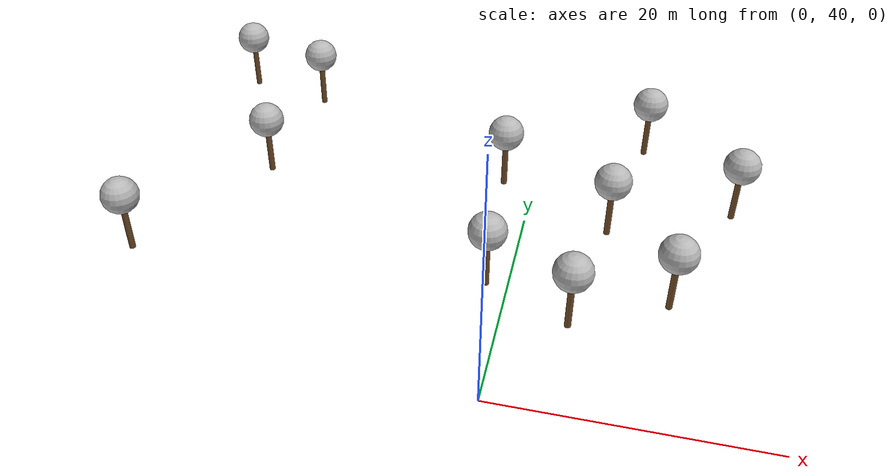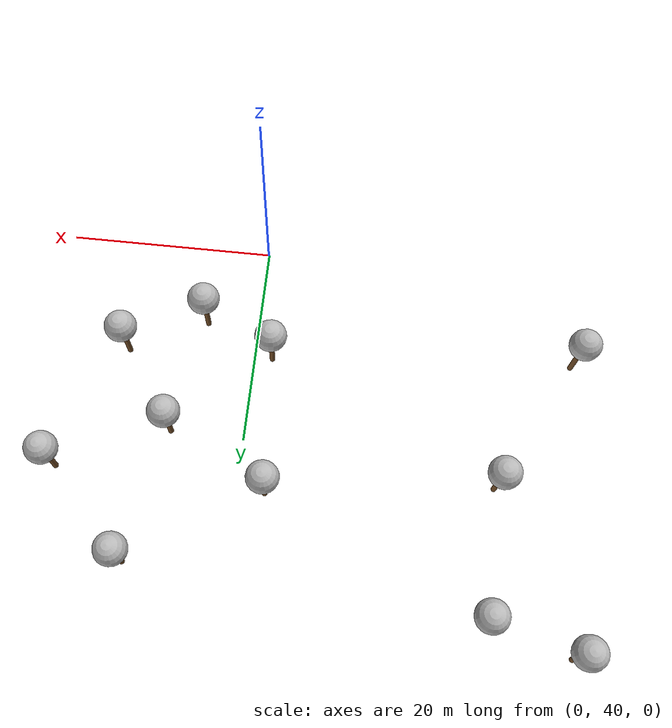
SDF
<sdf version="1.7">
 <world name="default">
  <model name="tree_simple">
   <static>1</static>
   <link name="link">
    <pose>0 0 0.1 0 -0 0</pose>
    <inertial>
     <mass>666</mass>
     <inertia>
      <ixx>0.0861167</ixx>
      <ixy>0</ixy>
      <ixz>0</ixz>
      <iyy>0.0861167</iyy>
      <iyz>0</iyz>
      <izz>0.0861167</izz>
     </inertia>
    </inertial>
    <collision name="collision_trunk">
     <pose>0 0 2 0 -0 0</pose>
     <geometry><cylinder><radius>0.25</radius><length>4</length></cylinder></geometry>
     <surface>
      <contact>
       <poissons_ratio>0.347</poissons_ratio>
       <elastic_modulus>8.8e+09</elastic_modulus>
       <ode><kp>100000</kp><kd>100</kd><max_vel>100</max_vel><min_depth>0.001</min_depth></ode>
      </contact>
      <friction>
       <torsional>
        <coefficient>1</coefficient>
        <use_patch_radius>0</use_patch_radius>
        <surface_radius>0.01</surface_radius>
       </torsional>
      </friction>
     </surface>
    </collision>
    <collision name="collision_treetop">
     <pose>0 0 5.2 0 -0 0</pose>
     <geometry><sphere><radius>1.5</radius></sphere></geometry>
     <surface>
      <contact>
       <poissons_ratio>0.347</poissons_ratio>
       <elastic_modulus>8.8e+09</elastic_modulus>
       <ode><kp>100000</kp><kd>100</kd><max_vel>100</max_vel><min_depth>0.001</min_depth></ode>
      </contact>
      <friction>
       <torsional>
        <coefficient>1</coefficient>
        <use_patch_radius>0</use_patch_radius>
        <surface_radius>0.01</surface_radius>
       </torsional>
      </friction>
     </surface>
    </collision>
    <visual name="trunk">
     <pose>0 0 2 0 -0 0</pose>
     <geometry><cylinder><radius>0.25</radius><length>4</length></cylinder></geometry>
     <material>
      <script>
       <uri>model://tree_simple/scripts</uri>
       <uri>model://tree_simple/materials/textures</uri>
       <name>TreeSimple/Trunk</name>
      </script>
     </material>
    </visual>
    <visual name="treetop">
     <pose>0 0 5.2 0 -0 0</pose>
     <geometry><sphere><radius>1.5</radius></sphere></geometry>
     <material>
      <script>
       <uri>model://tree_simple/scripts</uri>
       <uri>model://tree_simple/materials/textures</uri>
       <name>TreeSimple/Treetop</name>
      </script>
     </material>
    </visual>
   </link>
   <pose>6.82311 59.8354 0 0 -0 0</pose>
  </model>
  <model name="tree_simple_0">
   <static>1</static>
   <link name="link">
    <pose>0 0 0.1 0 -0 0</pose>
    <inertial>
     <mass>666</mass>
     <inertia>
      <ixx>0.0861167</ixx>
      <ixy>0</ixy>
      <ixz>0</ixz>
      <iyy>0.0861167</iyy>
      <iyz>0</iyz>
      <izz>0.0861167</izz>
     </inertia>
    </inertial>
    <collision name="collision_trunk">
     <pose>0 0 2 0 -0 0</pose>
     <geometry><cylinder><radius>0.25</radius><length>4</length></cylinder></geometry>
     <surface>
      <contact>
       <poissons_ratio>0.347</poissons_ratio>
       <elastic_modulus>8.8e+09</elastic_modulus>
       <ode><kp>100000</kp><kd>100</kd><max_vel>100</max_vel><min_depth>0.001</min_depth></ode>
      </contact>
      <friction>
       <torsional>
        <coefficient>1</coefficient>
        <use_patch_radius>0</use_patch_radius>
        <surface_radius>0.01</surface_radius>
       </torsional>
      </friction>
     </surface>
    </collision>
    <collision name="collision_treetop">
     <pose>0 0 5.2 0 -0 0</pose>
     <geometry><sphere><radius>1.5</radius></sphere></geometry>
     <surface>
      <contact>
       <poissons_ratio>0.347</poissons_ratio>
       <elastic_modulus>8.8e+09</elastic_modulus>
       <ode><kp>100000</kp><kd>100</kd><max_vel>100</max_vel><min_depth>0.001</min_depth></ode>
      </contact>
      <friction>
       <torsional>
        <coefficient>1</coefficient>
        <use_patch_radius>0</use_patch_radius>
        <surface_radius>0.01</surface_radius>
       </torsional>
      </friction>
     </surface>
    </collision>
    <visual name="trunk">
     <pose>0 0 2 0 -0 0</pose>
     <geometry><cylinder><radius>0.25</radius><length>4</length></cylinder></geometry>
     <material>
      <script>
       <uri>model://tree_simple/scripts</uri>
       <uri>model://tree_simple/materials/textures</uri>
       <name>TreeSimple/Trunk</name>
      </script>
     </material>
    </visual>
    <visual name="treetop">
     <pose>0 0 5.2 0 -0 0</pose>
     <geometry><sphere><radius>1.5</radius></sphere></geometry>
     <material>
      <script>
       <uri>model://tree_simple/scripts</uri>
       <uri>model://tree_simple/materials/textures</uri>
       <name>TreeSimple/Treetop</name>
      </script>
     </material>
    </visual>
   </link>
   <pose>12.128 52.0004 0 0 -0 0</pose>
  </model>
  <model name="tree_simple_0_clone">
   <static>1</static>
   <link name="link">
    <pose>0 0 0.1 0 -0 0</pose>
    <inertial>
     <mass>666</mass>
     <inertia>
      <ixx>0.0861167</ixx>
      <ixy>0</ixy>
      <ixz>0</ixz>
      <iyy>0.0861167</iyy>
      <iyz>0</iyz>
      <izz>0.0861167</izz>
     </inertia>
    </inertial>
    <collision name="collision_trunk">
     <pose>0 0 2 0 -0 0</pose>
     <geometry><cylinder><radius>0.25</radius><length>4</length></cylinder></geometry>
     <surface>
      <contact>
       <poissons_ratio>0.347</poissons_ratio>
       <elastic_modulus>8.8e+09</elastic_modulus>
       <ode><kp>100000</kp><kd>100</kd><max_vel>100</max_vel><min_depth>0.001</min_depth></ode>
      </contact>
      <friction>
       <torsional>
        <coefficient>1</coefficient>
        <use_patch_radius>0</use_patch_radius>
        <surface_radius>0.01</surface_radius>
       </torsional>
      </friction>
     </surface>
    </collision>
    <collision name="collision_treetop">
     <pose>0 0 5.2 0 -0 0</pose>
     <geometry><sphere><radius>1.5</radius></sphere></geometry>
     <surface>
      <contact>
       <poissons_ratio>0.347</poissons_ratio>
       <elastic_modulus>8.8e+09</elastic_modulus>
       <ode><kp>100000</kp><kd>100</kd><max_vel>100</max_vel><min_depth>0.001</min_depth></ode>
      </contact>
      <friction>
       <torsional>
        <coefficient>1</coefficient>
        <use_patch_radius>0</use_patch_radius>
        <surface_radius>0.01</surface_radius>
       </torsional>
      </friction>
     </surface>
    </collision>
    <visual name="trunk">
     <pose>0 0 2 0 -0 0</pose>
     <geometry><cylinder><radius>0.25</radius><length>4</length></cylinder></geometry>
     <material>
      <script>
       <uri>model://tree_simple/scripts</uri>
       <uri>model://tree_simple/materials/textures</uri>
       <name>TreeSimple/Trunk</name>
      </script>
     </material>
    </visual>
    <visual name="treetop">
     <pose>0 0 5.2 0 -0 0</pose>
     <geometry><sphere><radius>1.5</radius></sphere></geometry>
     <material>
      <script>
       <uri>model://tree_simple/scripts</uri>
       <uri>model://tree_simple/materials/textures</uri>
       <name>TreeSimple/Treetop</name>
      </script>
     </material>
    </visual>
   </link>
   <pose>16.8324 64.3347 0 0 -0 0</pose>
  </model>
  <model name="tree_simple_0_clone_0">
   <static>1</static>
   <link name="link">
    <pose>0 0 0.1 0 -0 0</pose>
    <inertial>
     <mass>666</mass>
     <inertia>
      <ixx>0.0861167</ixx>
      <ixy>0</ixy>
      <ixz>0</ixz>
      <iyy>0.0861167</iyy>
      <iyz>0</iyz>
      <izz>0.0861167</izz>
     </inertia>
    </inertial>
    <collision name="collision_trunk">
     <pose>0 0 2 0 -0 0</pose>
     <geometry><cylinder><radius>0.25</radius><length>4</length></cylinder></geometry>
     <surface>
      <contact>
       <poissons_ratio>0.347</poissons_ratio>
       <elastic_modulus>8.8e+09</elastic_modulus>
       <ode><kp>100000</kp><kd>100</kd><max_vel>100</max_vel><min_depth>0.001</min_depth></ode>
      </contact>
      <friction>
       <torsional>
        <coefficient>1</coefficient>
        <use_patch_radius>0</use_patch_radius>
        <surface_radius>0.01</surface_radius>
       </torsional>
      </friction>
     </surface>
    </collision>
    <collision name="collision_treetop">
     <pose>0 0 5.2 0 -0 0</pose>
     <geometry><sphere><radius>1.5</radius></sphere></geometry>
     <surface>
      <contact>
       <poissons_ratio>0.347</poissons_ratio>
       <elastic_modulus>8.8e+09</elastic_modulus>
       <ode><kp>100000</kp><kd>100</kd><max_vel>100</max_vel><min_depth>0.001</min_depth></ode>
      </contact>
      <friction>
       <torsional>
        <coefficient>1</coefficient>
        <use_patch_radius>0</use_patch_radius>
        <surface_radius>0.01</surface_radius>
       </torsional>
      </friction>
     </surface>
    </collision>
    <visual name="trunk">
     <pose>0 0 2 0 -0 0</pose>
     <geometry><cylinder><radius>0.25</radius><length>4</length></cylinder></geometry>
     <material>
      <script>
       <uri>model://tree_simple/scripts</uri>
       <uri>model://tree_simple/materials/textures</uri>
       <name>TreeSimple/Trunk</name>
      </script>
     </material>
    </visual>
    <visual name="treetop">
     <pose>0 0 5.2 0 -0 0</pose>
     <geometry><sphere><radius>1.5</radius></sphere></geometry>
     <material>
      <script>
       <uri>model://tree_simple/scripts</uri>
       <uri>model://tree_simple/materials/textures</uri>
       <name>TreeSimple/Treetop</name>
      </script>
     </material>
    </visual>
   </link>
   <pose>-2.64272 64.897 0 0 -0 0</pose>
  </model>
  <model name="tree_simple_0_clone_0_clone">
   <static>1</static>
   <link name="link">
    <pose>0 0 0.1 0 -0 0</pose>
    <inertial>
     <mass>666</mass>
     <inertia>
      <ixx>0.0861167</ixx>
      <ixy>0</ixy>
      <ixz>0</ixz>
      <iyy>0.0861167</iyy>
      <iyz>0</iyz>
      <izz>0.0861167</izz>
     </inertia>
    </inertial>
    <collision name="collision_trunk">
     <pose>0 0 2 0 -0 0</pose>
     <geometry><cylinder><radius>0.25</radius><length>4</length></cylinder></geometry>
     <surface>
      <contact>
       <poissons_ratio>0.347</poissons_ratio>
       <elastic_modulus>8.8e+09</elastic_modulus>
       <ode><kp>100000</kp><kd>100</kd><max_vel>100</max_vel><min_depth>0.001</min_depth></ode>
      </contact>
      <friction>
       <torsional>
        <coefficient>1</coefficient>
        <use_patch_radius>0</use_patch_radius>
        <surface_radius>0.01</surface_radius>
       </torsional>
      </friction>
     </surface>
    </collision>
    <collision name="collision_treetop">
     <pose>0 0 5.2 0 -0 0</pose>
     <geometry><sphere><radius>1.5</radius></sphere></geometry>
     <surface>
      <contact>
       <poissons_ratio>0.347</poissons_ratio>
       <elastic_modulus>8.8e+09</elastic_modulus>
       <ode><kp>100000</kp><kd>100</kd><max_vel>100</max_vel><min_depth>0.001</min_depth></ode>
      </contact>
      <friction>
       <torsional>
        <coefficient>1</coefficient>
        <use_patch_radius>0</use_patch_radius>
        <surface_radius>0.01</surface_radius>
       </torsional>
      </friction>
     </surface>
    </collision>
    <visual name="trunk">
     <pose>0 0 2 0 -0 0</pose>
     <geometry><cylinder><radius>0.25</radius><length>4</length></cylinder></geometry>
     <material>
      <script>
       <uri>model://tree_simple/scripts</uri>
       <uri>model://tree_simple/materials/textures</uri>
       <name>TreeSimple/Trunk</name>
      </script>
     </material>
    </visual>
    <visual name="treetop">
     <pose>0 0 5.2 0 -0 0</pose>
     <geometry><sphere><radius>1.5</radius></sphere></geometry>
     <material>
      <script>
       <uri>model://tree_simple/scripts</uri>
       <uri>model://tree_simple/materials/textures</uri>
       <name>TreeSimple/Treetop</name>
      </script>
     </material>
    </visual>
   </link>
   <pose>4.97961 48.3486 0 0 -0 0</pose>
  </model>
  <model name="tree_simple_0_clone_0_clone_clone">
   <static>1</static>
   <link name="link">
    <pose>0 0 0.1 0 -0 0</pose>
    <inertial>
     <mass>666</mass>
     <inertia>
      <ixx>0.0861167</ixx>
      <ixy>0</ixy>
      <ixz>0</ixz>
      <iyy>0.0861167</iyy>
      <iyz>0</iyz>
      <izz>0.0861167</izz>
     </inertia>
    </inertial>
    <collision name="collision_trunk">
     <pose>0 0 2 0 -0 0</pose>
     <geometry><cylinder><radius>0.25</radius><length>4</length></cylinder></geometry>
     <surface>
      <contact>
       <poissons_ratio>0.347</poissons_ratio>
       <elastic_modulus>8.8e+09</elastic_modulus>
       <ode><kp>100000</kp><kd>100</kd><max_vel>100</max_vel><min_depth>0.001</min_depth></ode>
      </contact>
      <friction>
       <torsional>
        <coefficient>1</coefficient>
        <use_patch_radius>0</use_patch_radius>
        <surface_radius>0.01</surface_radius>
       </torsional>
      </friction>
     </surface>
    </collision>
    <collision name="collision_treetop">
     <pose>0 0 5.2 0 -0 0</pose>
     <geometry><sphere><radius>1.5</radius></sphere></geometry>
     <surface>
      <contact>
       <poissons_ratio>0.347</poissons_ratio>
       <elastic_modulus>8.8e+09</elastic_modulus>
       <ode><kp>100000</kp><kd>100</kd><max_vel>100</max_vel><min_depth>0.001</min_depth></ode>
      </contact>
      <friction>
       <torsional>
        <coefficient>1</coefficient>
        <use_patch_radius>0</use_patch_radius>
        <surface_radius>0.01</surface_radius>
       </torsional>
      </friction>
     </surface>
    </collision>
    <visual name="trunk">
     <pose>0 0 2 0 -0 0</pose>
     <geometry><cylinder><radius>0.25</radius><length>4</length></cylinder></geometry>
     <material>
      <script>
       <uri>model://tree_simple/scripts</uri>
       <uri>model://tree_simple/materials/textures</uri>
       <name>TreeSimple/Trunk</name>
      </script>
     </material>
    </visual>
    <visual name="treetop">
     <pose>0 0 5.2 0 -0 0</pose>
     <geometry><sphere><radius>1.5</radius></sphere></geometry>
     <material>
      <script>
       <uri>model://tree_simple/scripts</uri>
       <uri>model://tree_simple/materials/textures</uri>
       <name>TreeSimple/Treetop</name>
      </script>
     </material>
    </visual>
   </link>
   <pose>-23.3649 62.2395 0 0 -0 0</pose>
  </model>
  <model name="tree_simple_0_clone_0_clone_clone_0">
   <static>1</static>
   <link name="link">
    <pose>0 0 0.1 0 -0 0</pose>
    <inertial>
     <mass>666</mass>
     <inertia>
      <ixx>0.0861167</ixx>
      <ixy>0</ixy>
      <ixz>0</ixz>
      <iyy>0.0861167</iyy>
      <iyz>0</iyz>
      <izz>0.0861167</izz>
     </inertia>
    </inertial>
    <collision name="collision_trunk">
     <pose>0 0 2 0 -0 0</pose>
     <geometry><cylinder><radius>0.25</radius><length>4</length></cylinder></geometry>
     <surface>
      <contact>
       <poissons_ratio>0.347</poissons_ratio>
       <elastic_modulus>8.8e+09</elastic_modulus>
       <ode><kp>100000</kp><kd>100</kd><max_vel>100</max_vel><min_depth>0.001</min_depth></ode>
      </contact>
      <friction>
       <torsional>
        <coefficient>1</coefficient>
        <use_patch_radius>0</use_patch_radius>
        <surface_radius>0.01</surface_radius>
       </torsional>
      </friction>
     </surface>
    </collision>
    <collision name="collision_treetop">
     <pose>0 0 5.2 0 -0 0</pose>
     <geometry><sphere><radius>1.5</radius></sphere></geometry>
     <surface>
      <contact>
       <poissons_ratio>0.347</poissons_ratio>
       <elastic_modulus>8.8e+09</elastic_modulus>
       <ode><kp>100000</kp><kd>100</kd><max_vel>100</max_vel><min_depth>0.001</min_depth></ode>
      </contact>
      <friction>
       <torsional>
        <coefficient>1</coefficient>
        <use_patch_radius>0</use_patch_radius>
        <surface_radius>0.01</surface_radius>
       </torsional>
      </friction>
     </surface>
    </collision>
    <visual name="trunk">
     <pose>0 0 2 0 -0 0</pose>
     <geometry><cylinder><radius>0.25</radius><length>4</length></cylinder></geometry>
     <material>
      <script>
       <uri>model://tree_simple/scripts</uri>
       <uri>model://tree_simple/materials/textures</uri>
       <name>TreeSimple/Trunk</name>
      </script>
     </material>
    </visual>
    <visual name="treetop">
     <pose>0 0 5.2 0 -0 0</pose>
     <geometry><sphere><radius>1.5</radius></sphere></geometry>
     <material>
      <script>
       <uri>model://tree_simple/scripts</uri>
       <uri>model://tree_simple/materials/textures</uri>
       <name>TreeSimple/Treetop</name>
      </script>
     </material>
    </visual>
   </link>
   <pose>9.13521 72.4249 0 0 -0 0</pose>
  </model>
  <model name="tree_simple_0_clone_0_clone_clone_7">
   <static>1</static>
   <link name="link">
    <pose>0 0 0.1 0 -0 0</pose>
    <inertial>
     <mass>666</mass>
     <inertia>
      <ixx>0.0861167</ixx>
      <ixy>0</ixy>
      <ixz>0</ixz>
      <iyy>0.0861167</iyy>
      <iyz>0</iyz>
      <izz>0.0861167</izz>
     </inertia>
    </inertial>
    <collision name="collision_trunk">
     <pose>0 0 2 0 -0 0</pose>
     <geometry><cylinder><radius>0.25</radius><length>4</length></cylinder></geometry>
     <surface>
      <contact>
       <poissons_ratio>0.347</poissons_ratio>
       <elastic_modulus>8.8e+09</elastic_modulus>
       <ode><kp>100000</kp><kd>100</kd><max_vel>100</max_vel><min_depth>0.001</min_depth></ode>
      </contact>
      <friction>
       <torsional>
        <coefficient>1</coefficient>
        <use_patch_radius>0</use_patch_radius>
        <surface_radius>0.01</surface_radius>
       </torsional>
      </friction>
     </surface>
    </collision>
    <collision name="collision_treetop">
     <pose>0 0 5.2 0 -0 0</pose>
     <geometry><sphere><radius>1.5</radius></sphere></geometry>
     <surface>
      <contact>
       <poissons_ratio>0.347</poissons_ratio>
       <elastic_modulus>8.8e+09</elastic_modulus>
       <ode><kp>100000</kp><kd>100</kd><max_vel>100</max_vel><min_depth>0.001</min_depth></ode>
      </contact>
      <friction>
       <torsional>
        <coefficient>1</coefficient>
        <use_patch_radius>0</use_patch_radius>
        <surface_radius>0.01</surface_radius>
       </torsional>
      </friction>
     </surface>
    </collision>
    <visual name="trunk">
     <pose>0 0 2 0 -0 0</pose>
     <geometry><cylinder><radius>0.25</radius><length>4</length></cylinder></geometry>
     <material>
      <script>
       <uri>model://tree_simple/scripts</uri>
       <uri>model://tree_simple/materials/textures</uri>
       <name>TreeSimple/Trunk</name>
      </script>
     </material>
    </visual>
    <visual name="treetop">
     <pose>0 0 5.2 0 -0 0</pose>
     <geometry><sphere><radius>1.5</radius></sphere></geometry>
     <material>
      <script>
       <uri>model://tree_simple/scripts</uri>
       <uri>model://tree_simple/materials/textures</uri>
       <name>TreeSimple/Treetop</name>
      </script>
     </material>
    </visual>
   </link>
   <pose>-30.3601 49.313 0 0 -0 0</pose>
  </model>
  <model name="tree_simple_0_clone_0_clone_clone_8">
   <static>1</static>
   <link name="link">
    <pose>0 0 0.1 0 -0 0</pose>
    <inertial>
     <mass>666</mass>
     <inertia>
      <ixx>0.0861167</ixx>
      <ixy>0</ixy>
      <ixz>0</ixz>
      <iyy>0.0861167</iyy>
      <iyz>0</iyz>
      <izz>0.0861167</izz>
     </inertia>
    </inertial>
    <collision name="collision_trunk">
     <pose>0 0 2 0 -0 0</pose>
     <geometry><cylinder><radius>0.25</radius><length>4</length></cylinder></geometry>
     <surface>
      <contact>
       <poissons_ratio>0.347</poissons_ratio>
       <elastic_modulus>8.8e+09</elastic_modulus>
       <ode><kp>100000</kp><kd>100</kd><max_vel>100</max_vel><min_depth>0.001</min_depth></ode>
      </contact>
      <friction>
       <torsional>
        <coefficient>1</coefficient>
        <use_patch_radius>0</use_patch_radius>
        <surface_radius>0.01</surface_radius>
       </torsional>
      </friction>
     </surface>
    </collision>
    <collision name="collision_treetop">
     <pose>0 0 5.2 0 -0 0</pose>
     <geometry><sphere><radius>1.5</radius></sphere></geometry>
     <surface>
      <contact>
       <poissons_ratio>0.347</poissons_ratio>
       <elastic_modulus>8.8e+09</elastic_modulus>
       <ode><kp>100000</kp><kd>100</kd><max_vel>100</max_vel><min_depth>0.001</min_depth></ode>
      </contact>
      <friction>
       <torsional>
        <coefficient>1</coefficient>
        <use_patch_radius>0</use_patch_radius>
        <surface_radius>0.01</surface_radius>
       </torsional>
      </friction>
     </surface>
    </collision>
    <visual name="trunk">
     <pose>0 0 2 0 -0 0</pose>
     <geometry><cylinder><radius>0.25</radius><length>4</length></cylinder></geometry>
     <material>
      <script>
       <uri>model://tree_simple/scripts</uri>
       <uri>model://tree_simple/materials/textures</uri>
       <name>TreeSimple/Trunk</name>
      </script>
     </material>
    </visual>
    <visual name="treetop">
     <pose>0 0 5.2 0 -0 0</pose>
     <geometry><sphere><radius>1.5</radius></sphere></geometry>
     <material>
      <script>
       <uri>model://tree_simple/scripts</uri>
       <uri>model://tree_simple/materials/textures</uri>
       <name>TreeSimple/Treetop</name>
      </script>
     </material>
    </visual>
   </link>
   <pose>-30.3848 76.516 0 0 -0 0</pose>
  </model>
  <model name="tree_simple_0_clone_0_clone_clone_9">
   <static>1</static>
   <link name="link">
    <pose>0 0 0.1 0 -0 0</pose>
    <inertial>
     <mass>666</mass>
     <inertia>
      <ixx>0.0861167</ixx>
      <ixy>0</ixy>
      <ixz>0</ixz>
      <iyy>0.0861167</iyy>
      <iyz>0</iyz>
      <izz>0.0861167</izz>
     </inertia>
    </inertial>
    <collision name="collision_trunk">
     <pose>0 0 2 0 -0 0</pose>
     <geometry><cylinder><radius>0.25</radius><length>4</length></cylinder></geometry>
     <surface>
      <contact>
       <poissons_ratio>0.347</poissons_ratio>
       <elastic_modulus>8.8e+09</elastic_modulus>
       <ode><kp>100000</kp><kd>100</kd><max_vel>100</max_vel><min_depth>0.001</min_depth></ode>
      </contact>
      <friction>
       <torsional>
        <coefficient>1</coefficient>
        <use_patch_radius>0</use_patch_radius>
        <surface_radius>0.01</surface_radius>
       </torsional>
      </friction>
     </surface>
    </collision>
    <collision name="collision_treetop">
     <pose>0 0 5.2 0 -0 0</pose>
     <geometry><sphere><radius>1.5</radius></sphere></geometry>
     <surface>
      <contact>
       <poissons_ratio>0.347</poissons_ratio>
       <elastic_modulus>8.8e+09</elastic_modulus>
       <ode><kp>100000</kp><kd>100</kd><max_vel>100</max_vel><min_depth>0.001</min_depth></ode>
      </contact>
      <friction>
       <torsional>
        <coefficient>1</coefficient>
        <use_patch_radius>0</use_patch_radius>
        <surface_radius>0.01</surface_radius>
       </torsional>
      </friction>
     </surface>
    </collision>
    <visual name="trunk">
     <pose>0 0 2 0 -0 0</pose>
     <geometry><cylinder><radius>0.25</radius><length>4</length></cylinder></geometry>
     <material>
      <script>
       <uri>model://tree_simple/scripts</uri>
       <uri>model://tree_simple/materials/textures</uri>
       <name>TreeSimple/Trunk</name>
      </script>
     </material>
    </visual>
    <visual name="treetop">
     <pose>0 0 5.2 0 -0 0</pose>
     <geometry><sphere><radius>1.5</radius></sphere></geometry>
     <material>
      <script>
       <uri>model://tree_simple/scripts</uri>
       <uri>model://tree_simple/materials/textures</uri>
       <name>TreeSimple/Treetop</name>
      </script>
     </material>
    </visual>
   </link>
   <pose>-22.5794 74.4779 0 0 -0 0</pose>
  </model>
  <model name="tree_simple_0_clone_0_clone_clone_10">
   <static>1</static>
   <link name="link">
    <pose>0 0 0.1 0 -0 0</pose>
    <inertial>
     <mass>666</mass>
     <inertia>
      <ixx>0.0861167</ixx>
      <ixy>0</ixy>
      <ixz>0</ixz>
      <iyy>0.0861167</iyy>
      <iyz>0</iyz>
      <izz>0.0861167</izz>
     </inertia>
    </inertial>
    <collision name="collision_trunk">
     <pose>0 0 2 0 -0 0</pose>
     <geometry><cylinder><radius>0.25</radius><length>4</length></cylinder></geometry>
     <surface>
      <contact>
       <poissons_ratio>0.347</poissons_ratio>
       <elastic_modulus>8.8e+09</elastic_modulus>
       <ode><kp>100000</kp><kd>100</kd><max_vel>100</max_vel><min_depth>0.001</min_depth></ode>
      </contact>
      <friction>
       <torsional>
        <coefficient>1</coefficient>
        <use_patch_radius>0</use_patch_radius>
        <surface_radius>0.01</surface_radius>
       </torsional>
      </friction>
     </surface>
    </collision>
    <collision name="collision_treetop">
     <pose>0 0 5.2 0 -0 0</pose>
     <geometry><sphere><radius>1.5</radius></sphere></geometry>
     <surface>
      <contact>
       <poissons_ratio>0.347</poissons_ratio>
       <elastic_modulus>8.8e+09</elastic_modulus>
       <ode><kp>100000</kp><kd>100</kd><max_vel>100</max_vel><min_depth>0.001</min_depth></ode>
      </contact>
      <friction>
       <torsional>
        <coefficient>1</coefficient>
        <use_patch_radius>0</use_patch_radius>
        <surface_radius>0.01</surface_radius>
       </torsional>
      </friction>
     </surface>
    </collision>
    <visual name="trunk">
     <pose>0 0 2 0 -0 0</pose>
     <geometry><cylinder><radius>0.25</radius><length>4</length></cylinder></geometry>
     <material>
      <script>
       <uri>model://tree_simple/scripts</uri>
       <uri>model://tree_simple/materials/textures</uri>
       <name>TreeSimple/Trunk</name>
      </script>
     </material>
    </visual>
    <visual name="treetop">
     <pose>0 0 5.2 0 -0 0</pose>
     <geometry><sphere><radius>1.5</radius></sphere></geometry>
     <material>
      <script>
       <uri>model://tree_simple/scripts</uri>
       <uri>model://tree_simple/materials/textures</uri>
       <name>TreeSimple/Treetop</name>
      </script>
     </material>
    </visual>
   </link>
   <pose>-1.71745 51.4871 0 0 -0 0</pose>
  </model>
 </world>
</sdf>
